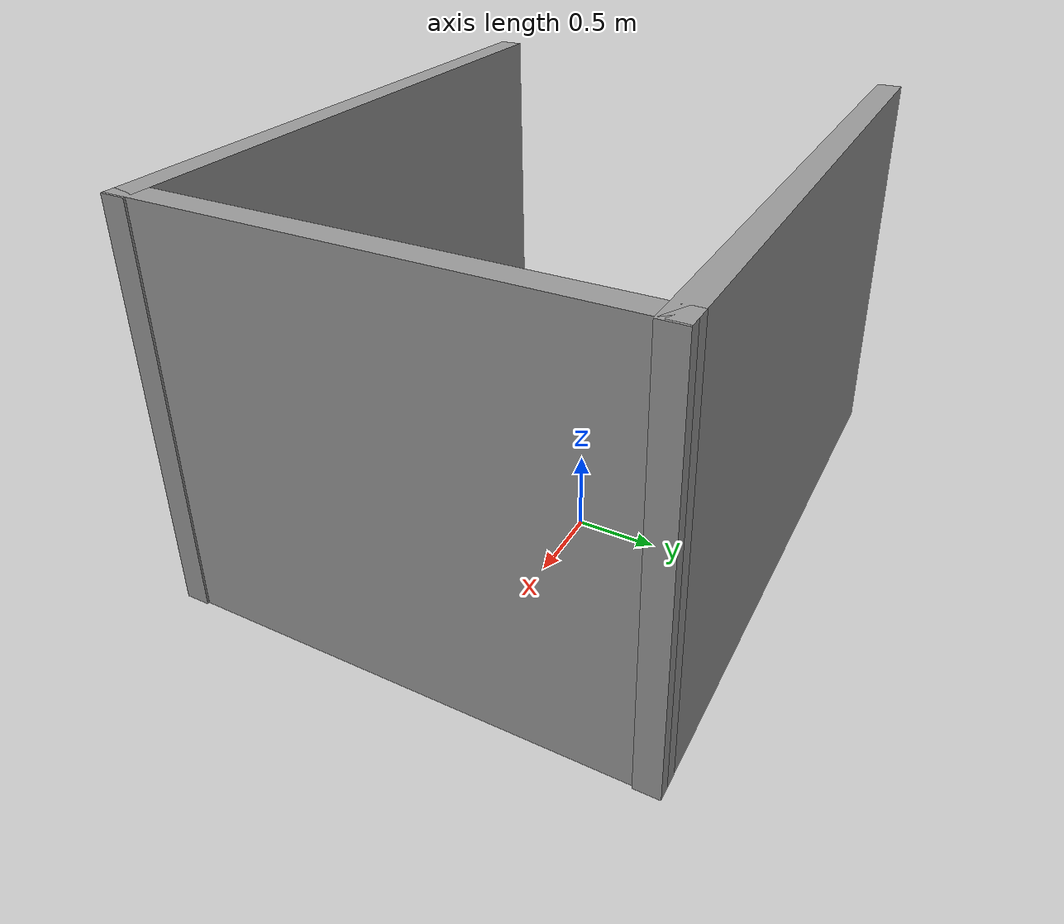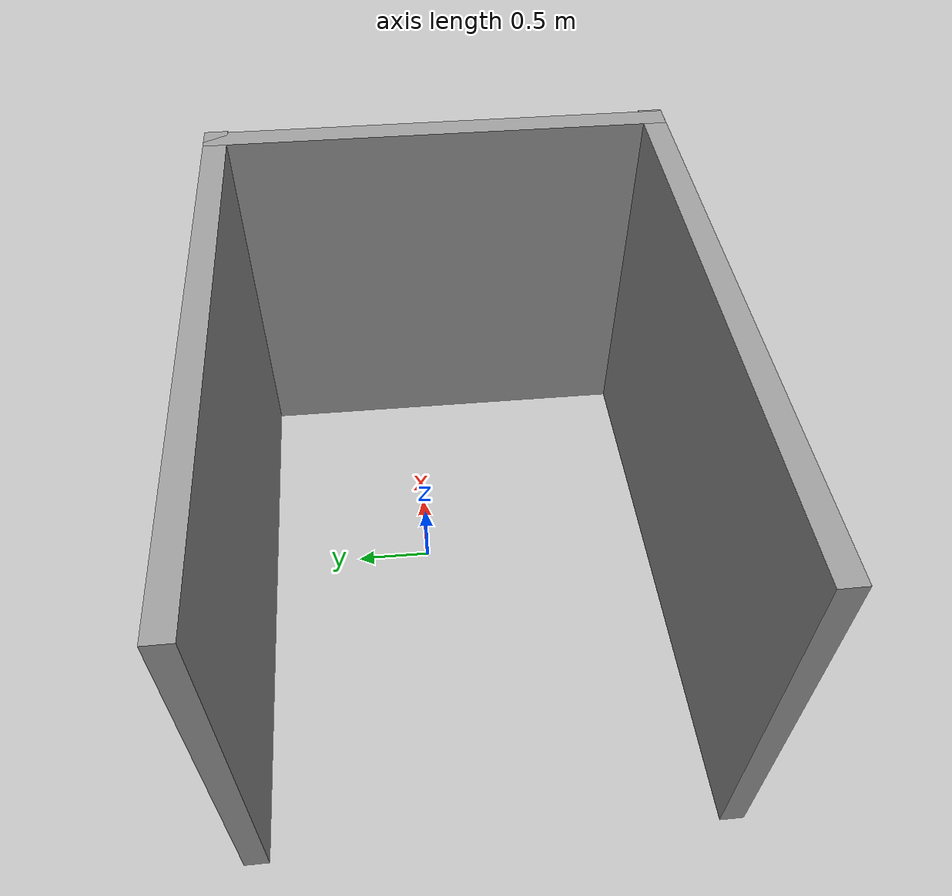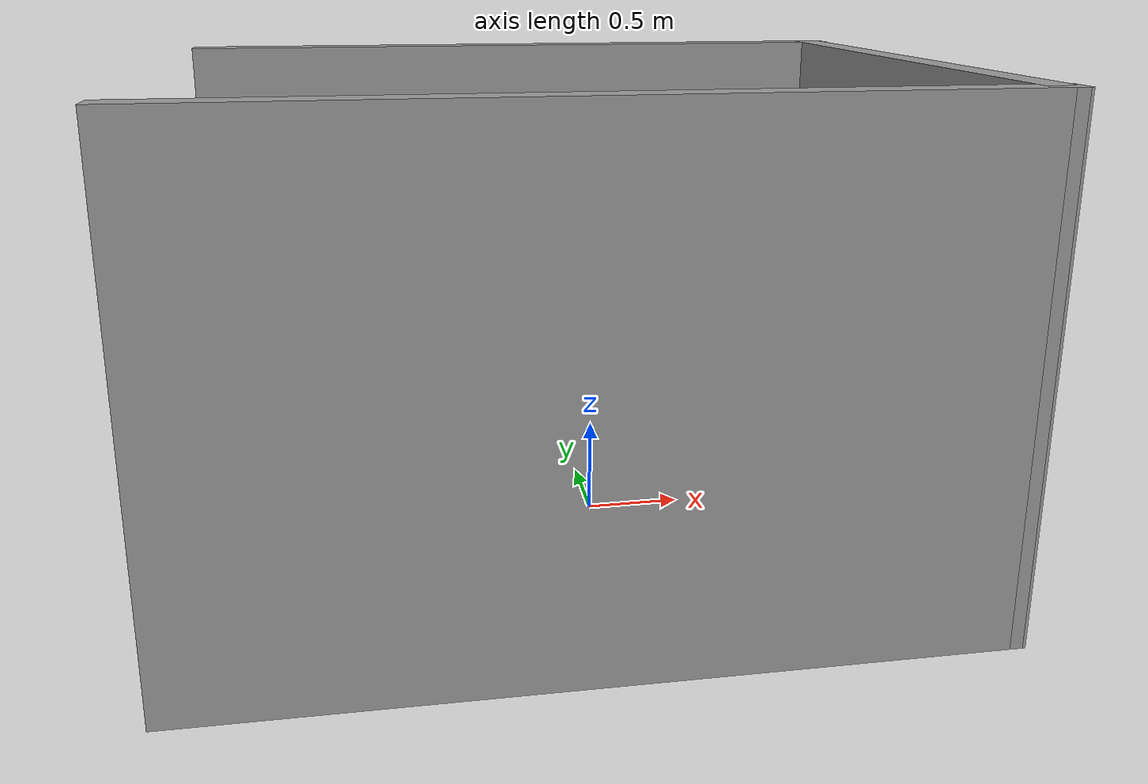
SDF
<?xml version='1.0'?>
<sdf version='1.6'>
  <model name='Untitled'>
    <pose frame=''>-0.227306 -0.25236 0 0 -0 0</pose>
    <link name='Wall_0'>
      <collision name='Wall_0_Collision'>
        <geometry>
          <box>
            <size>3.81374 0.15 2.5</size>
          </box>
        </geometry>
        <pose frame=''>0 0 1.25 0 -0 0</pose>
      </collision>
      <visual name='Wall_0_Visual'>
        <pose frame=''>0 0 1.25 0 -0 0</pose>
        <geometry>
          <box>
            <size>3.81374 0.15 2.5</size>
          </box>
        </geometry>
        <material>
          <script>
            <uri>file://media/materials/scripts/gazebo.material</uri>
            <name>Gazebo/Grey</name>
          </script>
          <ambient>1 1 1 1</ambient>
        </material>
        <meta>
          <layer>0</layer>
        </meta>
      </visual>
      <pose frame=''>0 -1.425 0 0 -0 0.007137</pose>
    </link>
    <link name='Wall_1'>
      <collision name='Wall_1_Collision'>
        <geometry>
          <box>
            <size>3 0.15 2.5</size>
          </box>
        </geometry>
        <pose frame=''>0 0 1.25 0 -0 0</pose>
      </collision>
      <visual name='Wall_1_Visual'>
        <pose frame=''>0 0 1.25 0 -0 0</pose>
        <geometry>
          <box>
            <size>3 0.15 2.5</size>
          </box>
        </geometry>
        <material>
          <script>
            <uri>file://media/materials/scripts/gazebo.material</uri>
            <name>Gazebo/Grey</name>
          </script>
          <ambient>1 1 1 1</ambient>
        </material>
        <meta>
          <layer>0</layer>
        </meta>
      </visual>
      <pose frame=''>1.8186 0.013075 0 0 -0 1.5708</pose>
    </link>
    <link name='Wall_2'>
      <collision name='Wall_2_Collision'>
        <geometry>
          <box>
            <size>3.81374 0.15 2.5</size>
          </box>
        </geometry>
        <pose frame=''>0 0 1.25 0 -0 0</pose>
      </collision>
      <visual name='Wall_2_Visual'>
        <pose frame=''>0 0 1.25 0 -0 0</pose>
        <geometry>
          <box>
            <size>3.81374 0.15 2.5</size>
          </box>
        </geometry>
        <material>
          <script>
            <uri>file://media/materials/scripts/gazebo.material</uri>
            <name>Gazebo/Grey</name>
          </script>
          <ambient>1 1 1 1</ambient>
        </material>
        <meta>
          <layer>0</layer>
        </meta>
      </visual>
      <pose frame=''>0 1.425 0 0 -0 -3.13445</pose>
    </link>
    <static>1</static>
  </model>
</sdf>
